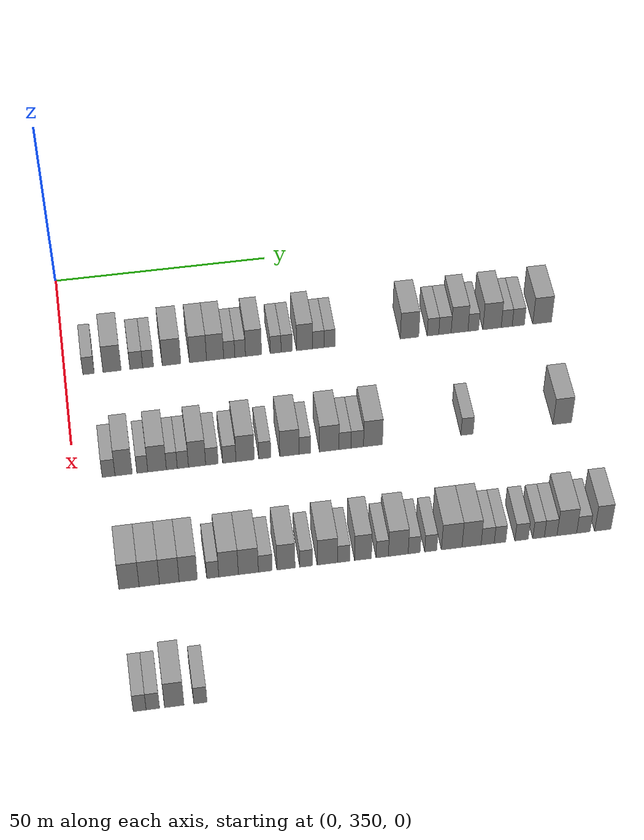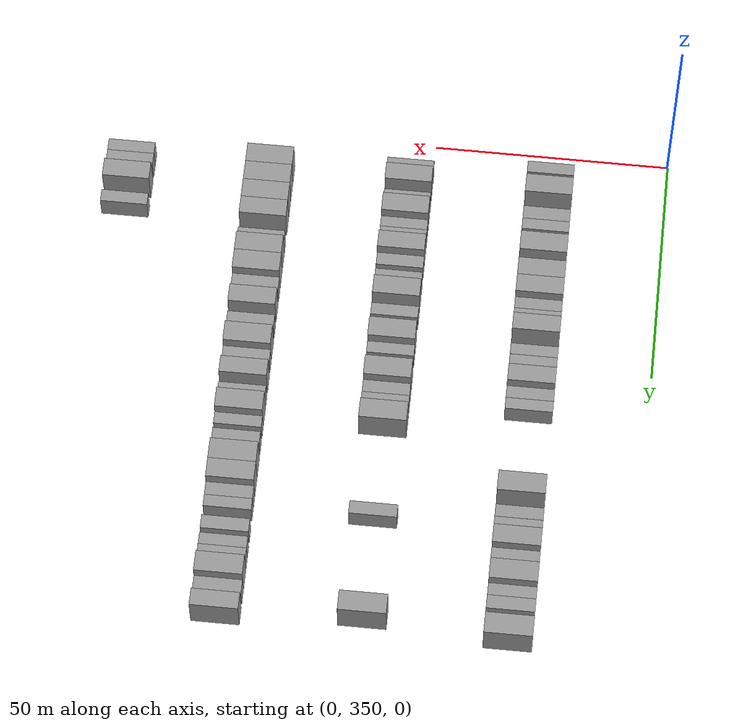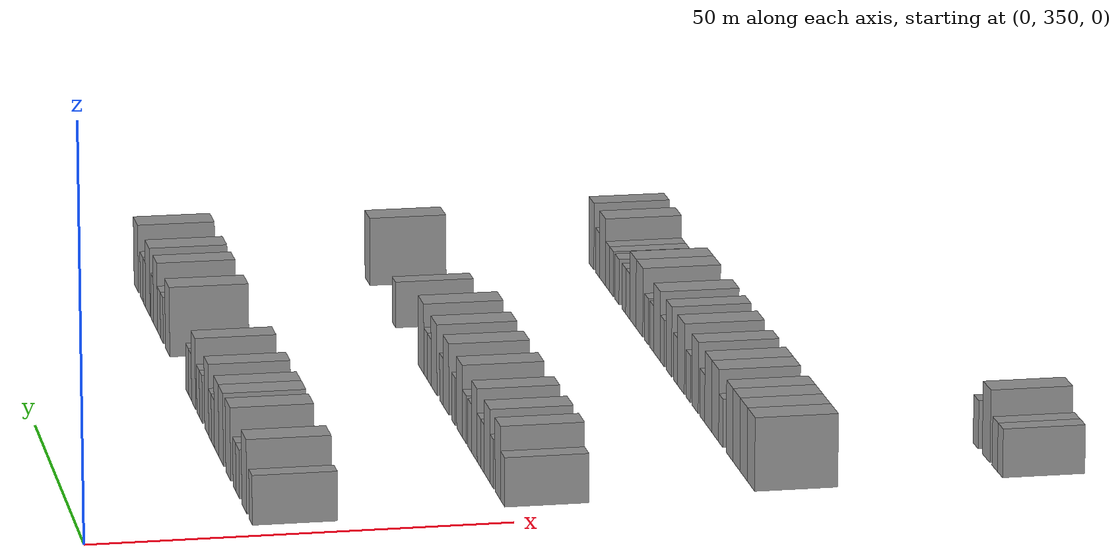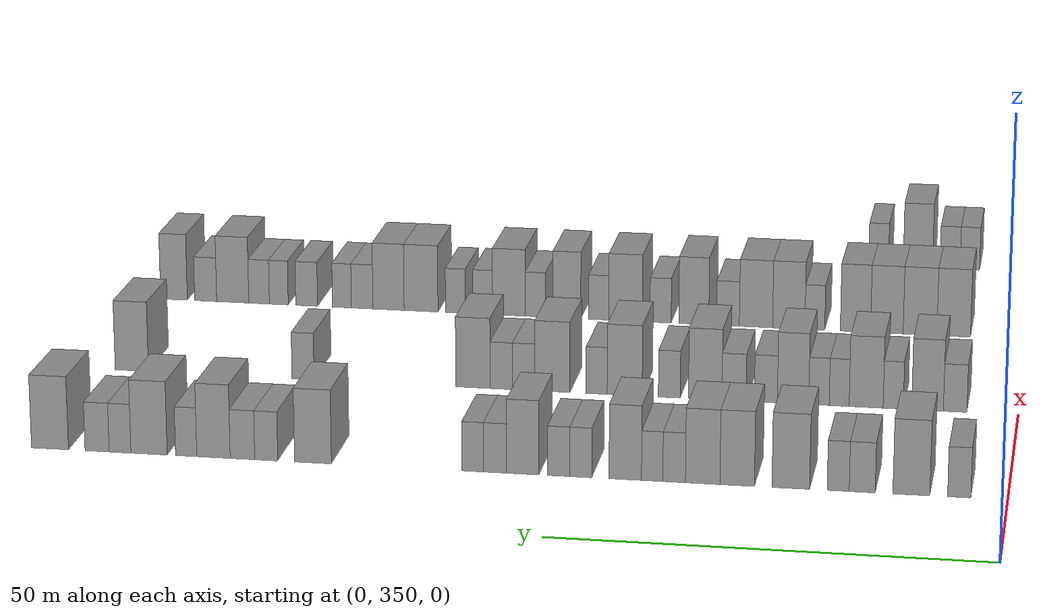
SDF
<sdf version="1.6">
 <world name="default">
  <model name="building_204">
   <static>1</static>
   <pose>25.0000 355.5029 0 0.000000 0.000000 0.000000</pose>
   <link name="link">
    <pose>0 0 3.00 0 0 0</pose>
    <collision name="collision"><geometry><box><size>10.0000 2.6158 6.0000</size></box></geometry></collision>
    <visual name="visual">
     <cast_shadows>0</cast_shadows>
     <geometry><box><size>10.0000 2.6158 6.0000</size></box></geometry>
     <material>
      <script>
       <uri>model://grey_wall/materials/scripts</uri>
       <uri>model://grey_wall/materials/textures</uri>
       <name>vrc/grey_wall</name>
      </script>
     </material>
    </visual>
   </link>
  </model>
  <model name="building_205">
   <static>1</static>
   <pose>25.0000 360.8982 0 0.000000 0.000000 0.000000</pose>
   <link name="link">
    <pose>0 0 4.50 0 0 0</pose>
    <collision name="collision"><geometry><box><size>10.0000 4.1748 9.0000</size></box></geometry></collision>
    <visual name="visual">
     <cast_shadows>0</cast_shadows>
     <geometry><box><size>10.0000 4.1748 9.0000</size></box></geometry>
     <material>
      <script>
       <uri>model://grey_wall/materials/scripts</uri>
       <uri>model://grey_wall/materials/textures</uri>
       <name>vrc/grey_wall</name>
      </script>
     </material>
    </visual>
   </link>
  </model>
  <model name="building_206">
   <static>1</static>
   <pose>25.0000 366.4586 0 0.000000 0.000000 0.000000</pose>
   <link name="link">
    <pose>0 0 3.00 0 0 0</pose>
    <collision name="collision"><geometry><box><size>10.0000 2.9460 6.0000</size></box></geometry></collision>
    <visual name="visual">
     <cast_shadows>0</cast_shadows>
     <geometry><box><size>10.0000 2.9460 6.0000</size></box></geometry>
     <material>
      <script>
       <uri>model://grey_wall/materials/scripts</uri>
       <uri>model://grey_wall/materials/textures</uri>
       <name>vrc/grey_wall</name>
      </script>
     </material>
    </visual>
   </link>
  </model>
  <model name="building_207">
   <static>1</static>
   <pose>25.0000 369.1864 0 0.000000 0.000000 0.000000</pose>
   <link name="link">
    <pose>0 0 3.00 0 0 0</pose>
    <collision name="collision"><geometry><box><size>10.0000 2.5094 6.0000</size></box></geometry></collision>
    <visual name="visual">
     <cast_shadows>0</cast_shadows>
     <geometry><box><size>10.0000 2.5094 6.0000</size></box></geometry>
     <material>
      <script>
       <uri>model://grey_wall/materials/scripts</uri>
       <uri>model://grey_wall/materials/textures</uri>
       <name>vrc/grey_wall</name>
      </script>
     </material>
    </visual>
   </link>
  </model>
  <model name="building_208">
   <static>1</static>
   <pose>25.0000 374.5882 0 0.000000 0.000000 0.000000</pose>
   <link name="link">
    <pose>0 0 4.50 0 0 0</pose>
    <collision name="collision"><geometry><box><size>10.0000 4.2943 9.0000</size></box></geometry></collision>
    <visual name="visual">
     <cast_shadows>0</cast_shadows>
     <geometry><box><size>10.0000 4.2943 9.0000</size></box></geometry>
     <material>
      <script>
       <uri>model://grey_wall/materials/scripts</uri>
       <uri>model://grey_wall/materials/textures</uri>
       <name>vrc/grey_wall</name>
      </script>
     </material>
    </visual>
   </link>
  </model>
  <model name="building_209">
   <static>1</static>
   <pose>25.0000 380.7117 0 0.000000 0.000000 0.000000</pose>
   <link name="link">
    <pose>0 0 4.50 0 0 0</pose>
    <collision name="collision"><geometry><box><size>10.0000 3.9527 9.0000</size></box></geometry></collision>
    <visual name="visual">
     <cast_shadows>0</cast_shadows>
     <geometry><box><size>10.0000 3.9527 9.0000</size></box></geometry>
     <material>
      <script>
       <uri>model://grey_wall/materials/scripts</uri>
       <uri>model://grey_wall/materials/textures</uri>
       <name>vrc/grey_wall</name>
      </script>
     </material>
    </visual>
   </link>
  </model>
  <model name="building_210">
   <static>1</static>
   <pose>25.0000 384.6689 0 0.000000 0.000000 0.000000</pose>
   <link name="link">
    <pose>0 0 4.50 0 0 0</pose>
    <collision name="collision"><geometry><box><size>10.0000 3.9617 9.0000</size></box></geometry></collision>
    <visual name="visual">
     <cast_shadows>0</cast_shadows>
     <geometry><box><size>10.0000 3.9617 9.0000</size></box></geometry>
     <material>
      <script>
       <uri>model://grey_wall/materials/scripts</uri>
       <uri>model://grey_wall/materials/textures</uri>
       <name>vrc/grey_wall</name>
      </script>
     </material>
    </visual>
   </link>
  </model>
  <model name="building_211">
   <static>1</static>
   <pose>25.0000 387.9474 0 0.000000 0.000000 0.000000</pose>
   <link name="link">
    <pose>0 0 3.00 0 0 0</pose>
    <collision name="collision"><geometry><box><size>10.0000 2.5954 6.0000</size></box></geometry></collision>
    <visual name="visual">
     <cast_shadows>0</cast_shadows>
     <geometry><box><size>10.0000 2.5954 6.0000</size></box></geometry>
     <material>
      <script>
       <uri>model://grey_wall/materials/scripts</uri>
       <uri>model://grey_wall/materials/textures</uri>
       <name>vrc/grey_wall</name>
      </script>
     </material>
    </visual>
   </link>
  </model>
  <model name="building_212">
   <static>1</static>
   <pose>25.0000 390.4776 0 0.000000 0.000000 0.000000</pose>
   <link name="link">
    <pose>0 0 3.00 0 0 0</pose>
    <collision name="collision"><geometry><box><size>10.0000 2.4650 6.0000</size></box></geometry></collision>
    <visual name="visual">
     <cast_shadows>0</cast_shadows>
     <geometry><box><size>10.0000 2.4650 6.0000</size></box></geometry>
     <material>
      <script>
       <uri>model://grey_wall/materials/scripts</uri>
       <uri>model://grey_wall/materials/textures</uri>
       <name>vrc/grey_wall</name>
      </script>
     </material>
    </visual>
   </link>
  </model>
  <model name="building_213">
   <static>1</static>
   <pose>25.0000 393.5845 0 0.000000 0.000000 0.000000</pose>
   <link name="link">
    <pose>0 0 4.50 0 0 0</pose>
    <collision name="collision"><geometry><box><size>10.0000 3.7487 9.0000</size></box></geometry></collision>
    <visual name="visual">
     <cast_shadows>0</cast_shadows>
     <geometry><box><size>10.0000 3.7487 9.0000</size></box></geometry>
     <material>
      <script>
       <uri>model://grey_wall/materials/scripts</uri>
       <uri>model://grey_wall/materials/textures</uri>
       <name>vrc/grey_wall</name>
      </script>
     </material>
    </visual>
   </link>
  </model>
  <model name="building_214">
   <static>1</static>
   <pose>25.0000 398.7284 0 0.000000 0.000000 0.000000</pose>
   <link name="link">
    <pose>0 0 3.00 0 0 0</pose>
    <collision name="collision"><geometry><box><size>10.0000 2.5392 6.0000</size></box></geometry></collision>
    <visual name="visual">
     <cast_shadows>0</cast_shadows>
     <geometry><box><size>10.0000 2.5392 6.0000</size></box></geometry>
     <material>
      <script>
       <uri>model://grey_wall/materials/scripts</uri>
       <uri>model://grey_wall/materials/textures</uri>
       <name>vrc/grey_wall</name>
      </script>
     </material>
    </visual>
   </link>
  </model>
  <model name="building_215">
   <static>1</static>
   <pose>25.0000 401.2964 0 0.000000 0.000000 0.000000</pose>
   <link name="link">
    <pose>0 0 3.00 0 0 0</pose>
    <collision name="collision"><geometry><box><size>10.0000 2.5966 6.0000</size></box></geometry></collision>
    <visual name="visual">
     <cast_shadows>0</cast_shadows>
     <geometry><box><size>10.0000 2.5966 6.0000</size></box></geometry>
     <material>
      <script>
       <uri>model://grey_wall/materials/scripts</uri>
       <uri>model://grey_wall/materials/textures</uri>
       <name>vrc/grey_wall</name>
      </script>
     </material>
    </visual>
   </link>
  </model>
  <model name="building_216">
   <static>1</static>
   <pose>25.0000 405.4718 0 0.000000 0.000000 0.000000</pose>
   <link name="link">
    <pose>0 0 4.50 0 0 0</pose>
    <collision name="collision"><geometry><box><size>10.0000 3.7543 9.0000</size></box></geometry></collision>
    <visual name="visual">
     <cast_shadows>0</cast_shadows>
     <geometry><box><size>10.0000 3.7543 9.0000</size></box></geometry>
     <material>
      <script>
       <uri>model://grey_wall/materials/scripts</uri>
       <uri>model://grey_wall/materials/textures</uri>
       <name>vrc/grey_wall</name>
      </script>
     </material>
    </visual>
   </link>
  </model>
  <model name="building_217">
   <static>1</static>
   <pose>25.0000 408.7031 0 0.000000 0.000000 0.000000</pose>
   <link name="link">
    <pose>0 0 3.00 0 0 0</pose>
    <collision name="collision"><geometry><box><size>10.0000 2.7082 6.0000</size></box></geometry></collision>
    <visual name="visual">
     <cast_shadows>0</cast_shadows>
     <geometry><box><size>10.0000 2.7082 6.0000</size></box></geometry>
     <material>
      <script>
       <uri>model://grey_wall/materials/scripts</uri>
       <uri>model://grey_wall/materials/textures</uri>
       <name>vrc/grey_wall</name>
      </script>
     </material>
    </visual>
   </link>
  </model>
  <model name="building_218">
   <static>1</static>
   <pose>25.0000 411.3138 0 0.000000 0.000000 0.000000</pose>
   <link name="link">
    <pose>0 0 3.00 0 0 0</pose>
    <collision name="collision"><geometry><box><size>10.0000 2.5133 6.0000</size></box></geometry></collision>
    <visual name="visual">
     <cast_shadows>0</cast_shadows>
     <geometry><box><size>10.0000 2.5133 6.0000</size></box></geometry>
     <material>
      <script>
       <uri>model://grey_wall/materials/scripts</uri>
       <uri>model://grey_wall/materials/textures</uri>
       <name>vrc/grey_wall</name>
      </script>
     </material>
    </visual>
   </link>
  </model>
  <model name="building_219">
   <static>1</static>
   <pose>25.0000 430.1067 0 0.000000 0.000000 0.000000</pose>
   <link name="link">
    <pose>0 0 4.50 0 0 0</pose>
    <collision name="collision"><geometry><box><size>10.0000 4.3575 9.0000</size></box></geometry></collision>
    <visual name="visual">
     <cast_shadows>0</cast_shadows>
     <geometry><box><size>10.0000 4.3575 9.0000</size></box></geometry>
     <material>
      <script>
       <uri>model://grey_wall/materials/scripts</uri>
       <uri>model://grey_wall/materials/textures</uri>
       <name>vrc/grey_wall</name>
      </script>
     </material>
    </visual>
   </link>
  </model>
  <model name="building_220">
   <static>1</static>
   <pose>25.0000 435.6535 0 0.000000 0.000000 0.000000</pose>
   <link name="link">
    <pose>0 0 3.00 0 0 0</pose>
    <collision name="collision"><geometry><box><size>10.0000 2.7361 6.0000</size></box></geometry></collision>
    <visual name="visual">
     <cast_shadows>0</cast_shadows>
     <geometry><box><size>10.0000 2.7361 6.0000</size></box></geometry>
     <material>
      <script>
       <uri>model://grey_wall/materials/scripts</uri>
       <uri>model://grey_wall/materials/textures</uri>
       <name>vrc/grey_wall</name>
      </script>
     </material>
    </visual>
   </link>
  </model>
  <model name="building_221">
   <static>1</static>
   <pose>25.0000 438.4815 0 0.000000 0.000000 0.000000</pose>
   <link name="link">
    <pose>0 0 3.00 0 0 0</pose>
    <collision name="collision"><geometry><box><size>10.0000 2.9198 6.0000</size></box></geometry></collision>
    <visual name="visual">
     <cast_shadows>0</cast_shadows>
     <geometry><box><size>10.0000 2.9198 6.0000</size></box></geometry>
     <material>
      <script>
       <uri>model://grey_wall/materials/scripts</uri>
       <uri>model://grey_wall/materials/textures</uri>
       <name>vrc/grey_wall</name>
      </script>
     </material>
    </visual>
   </link>
  </model>
  <model name="building_222">
   <static>1</static>
   <pose>25.0000 441.9347 0 0.000000 0.000000 0.000000</pose>
   <link name="link">
    <pose>0 0 4.50 0 0 0</pose>
    <collision name="collision"><geometry><box><size>10.0000 3.9866 9.0000</size></box></geometry></collision>
    <visual name="visual">
     <cast_shadows>0</cast_shadows>
     <geometry><box><size>10.0000 3.9866 9.0000</size></box></geometry>
     <material>
      <script>
       <uri>model://grey_wall/materials/scripts</uri>
       <uri>model://grey_wall/materials/textures</uri>
       <name>vrc/grey_wall</name>
      </script>
     </material>
    </visual>
   </link>
  </model>
  <model name="building_223">
   <static>1</static>
   <pose>25.0000 445.1974 0 0.000000 0.000000 0.000000</pose>
   <link name="link">
    <pose>0 0 3.00 0 0 0</pose>
    <collision name="collision"><geometry><box><size>10.0000 2.5389 6.0000</size></box></geometry></collision>
    <visual name="visual">
     <cast_shadows>0</cast_shadows>
     <geometry><box><size>10.0000 2.5389 6.0000</size></box></geometry>
     <material>
      <script>
       <uri>model://grey_wall/materials/scripts</uri>
       <uri>model://grey_wall/materials/textures</uri>
       <name>vrc/grey_wall</name>
      </script>
     </material>
    </visual>
   </link>
  </model>
  <model name="building_224">
   <static>1</static>
   <pose>25.0000 449.6411 0 0.000000 0.000000 0.000000</pose>
   <link name="link">
    <pose>0 0 4.50 0 0 0</pose>
    <collision name="collision"><geometry><box><size>10.0000 4.3483 9.0000</size></box></geometry></collision>
    <visual name="visual">
     <cast_shadows>0</cast_shadows>
     <geometry><box><size>10.0000 4.3483 9.0000</size></box></geometry>
     <material>
      <script>
       <uri>model://grey_wall/materials/scripts</uri>
       <uri>model://grey_wall/materials/textures</uri>
       <name>vrc/grey_wall</name>
      </script>
     </material>
    </visual>
   </link>
  </model>
  <model name="building_225">
   <static>1</static>
   <pose>25.0000 453.1235 0 0.000000 0.000000 0.000000</pose>
   <link name="link">
    <pose>0 0 3.00 0 0 0</pose>
    <collision name="collision"><geometry><box><size>10.0000 2.6165 6.0000</size></box></geometry></collision>
    <visual name="visual">
     <cast_shadows>0</cast_shadows>
     <geometry><box><size>10.0000 2.6165 6.0000</size></box></geometry>
     <material>
      <script>
       <uri>model://grey_wall/materials/scripts</uri>
       <uri>model://grey_wall/materials/textures</uri>
       <name>vrc/grey_wall</name>
      </script>
     </material>
    </visual>
   </link>
  </model>
  <model name="building_226">
   <static>1</static>
   <pose>25.0000 455.8854 0 0.000000 0.000000 0.000000</pose>
   <link name="link">
    <pose>0 0 3.00 0 0 0</pose>
    <collision name="collision"><geometry><box><size>10.0000 2.9074 6.0000</size></box></geometry></collision>
    <visual name="visual">
     <cast_shadows>0</cast_shadows>
     <geometry><box><size>10.0000 2.9074 6.0000</size></box></geometry>
     <material>
      <script>
       <uri>model://grey_wall/materials/scripts</uri>
       <uri>model://grey_wall/materials/textures</uri>
       <name>vrc/grey_wall</name>
      </script>
     </material>
    </visual>
   </link>
  </model>
  <model name="building_227">
   <static>1</static>
   <pose>25.0000 461.5717 0 0.000000 0.000000 0.000000</pose>
   <link name="link">
    <pose>0 0 4.50 0 0 0</pose>
    <collision name="collision"><geometry><box><size>10.0000 4.4653 9.0000</size></box></geometry></collision>
    <visual name="visual">
     <cast_shadows>0</cast_shadows>
     <geometry><box><size>10.0000 4.4653 9.0000</size></box></geometry>
     <material>
      <script>
       <uri>model://grey_wall/materials/scripts</uri>
       <uri>model://grey_wall/materials/textures</uri>
       <name>vrc/grey_wall</name>
      </script>
     </material>
    </visual>
   </link>
  </model>
  <model name="building_428">
   <static>1</static>
   <pose>55.0000 357.6111 0 0.000000 0.000000 0.000000</pose>
   <link name="link">
    <pose>0 0 3.00 0 0 0</pose>
    <collision name="collision"><geometry><box><size>10.0000 2.8282 6.0000</size></box></geometry></collision>
    <visual name="visual">
     <cast_shadows>0</cast_shadows>
     <geometry><box><size>10.0000 2.8282 6.0000</size></box></geometry>
     <material>
      <script>
       <uri>model://grey_wall/materials/scripts</uri>
       <uri>model://grey_wall/materials/textures</uri>
       <name>vrc/grey_wall</name>
      </script>
     </material>
    </visual>
   </link>
  </model>
  <model name="building_429">
   <static>1</static>
   <pose>55.0000 360.9331 0 0.000000 0.000000 0.000000</pose>
   <link name="link">
    <pose>0 0 4.50 0 0 0</pose>
    <collision name="collision"><geometry><box><size>10.0000 3.8157 9.0000</size></box></geometry></collision>
    <visual name="visual">
     <cast_shadows>0</cast_shadows>
     <geometry><box><size>10.0000 3.8157 9.0000</size></box></geometry>
     <material>
      <script>
       <uri>model://grey_wall/materials/scripts</uri>
       <uri>model://grey_wall/materials/textures</uri>
       <name>vrc/grey_wall</name>
      </script>
     </material>
    </visual>
   </link>
  </model>
  <model name="building_430">
   <static>1</static>
   <pose>55.0000 365.0594 0 0.000000 0.000000 0.000000</pose>
   <link name="link">
    <pose>0 0 3.00 0 0 0</pose>
    <collision name="collision"><geometry><box><size>10.0000 2.4368 6.0000</size></box></geometry></collision>
    <visual name="visual">
     <cast_shadows>0</cast_shadows>
     <geometry><box><size>10.0000 2.4368 6.0000</size></box></geometry>
     <material>
      <script>
       <uri>model://grey_wall/materials/scripts</uri>
       <uri>model://grey_wall/materials/textures</uri>
       <name>vrc/grey_wall</name>
      </script>
     </material>
    </visual>
   </link>
  </model>
  <model name="building_431">
   <static>1</static>
   <pose>55.0000 368.3306 0 0.000000 0.000000 0.000000</pose>
   <link name="link">
    <pose>0 0 4.50 0 0 0</pose>
    <collision name="collision"><geometry><box><size>10.0000 4.1057 9.0000</size></box></geometry></collision>
    <visual name="visual">
     <cast_shadows>0</cast_shadows>
     <geometry><box><size>10.0000 4.1057 9.0000</size></box></geometry>
     <material>
      <script>
       <uri>model://grey_wall/materials/scripts</uri>
       <uri>model://grey_wall/materials/textures</uri>
       <name>vrc/grey_wall</name>
      </script>
     </material>
    </visual>
   </link>
  </model>
  <model name="building_432">
   <static>1</static>
   <pose>55.0000 371.5910 0 0.000000 0.000000 0.000000</pose>
   <link name="link">
    <pose>0 0 3.00 0 0 0</pose>
    <collision name="collision"><geometry><box><size>10.0000 2.4151 6.0000</size></box></geometry></collision>
    <visual name="visual">
     <cast_shadows>0</cast_shadows>
     <geometry><box><size>10.0000 2.4151 6.0000</size></box></geometry>
     <material>
      <script>
       <uri>model://grey_wall/materials/scripts</uri>
       <uri>model://grey_wall/materials/textures</uri>
       <name>vrc/grey_wall</name>
      </script>
     </material>
    </visual>
   </link>
  </model>
  <model name="building_433">
   <static>1</static>
   <pose>55.0000 374.0405 0 0.000000 0.000000 0.000000</pose>
   <link name="link">
    <pose>0 0 3.00 0 0 0</pose>
    <collision name="collision"><geometry><box><size>10.0000 2.4839 6.0000</size></box></geometry></collision>
    <visual name="visual">
     <cast_shadows>0</cast_shadows>
     <geometry><box><size>10.0000 2.4839 6.0000</size></box></geometry>
     <material>
      <script>
       <uri>model://grey_wall/materials/scripts</uri>
       <uri>model://grey_wall/materials/textures</uri>
       <name>vrc/grey_wall</name>
      </script>
     </material>
    </visual>
   </link>
  </model>
  <model name="building_434">
   <static>1</static>
   <pose>55.0000 377.1916 0 0.000000 0.000000 0.000000</pose>
   <link name="link">
    <pose>0 0 4.50 0 0 0</pose>
    <collision name="collision"><geometry><box><size>10.0000 3.8182 9.0000</size></box></geometry></collision>
    <visual name="visual">
     <cast_shadows>0</cast_shadows>
     <geometry><box><size>10.0000 3.8182 9.0000</size></box></geometry>
     <material>
      <script>
       <uri>model://grey_wall/materials/scripts</uri>
       <uri>model://grey_wall/materials/textures</uri>
       <name>vrc/grey_wall</name>
      </script>
     </material>
    </visual>
   </link>
  </model>
  <model name="building_435">
   <static>1</static>
   <pose>55.0000 380.4967 0 0.000000 0.000000 0.000000</pose>
   <link name="link">
    <pose>0 0 3.00 0 0 0</pose>
    <collision name="collision"><geometry><box><size>10.0000 2.7920 6.0000</size></box></geometry></collision>
    <visual name="visual">
     <cast_shadows>0</cast_shadows>
     <geometry><box><size>10.0000 2.7920 6.0000</size></box></geometry>
     <material>
      <script>
       <uri>model://grey_wall/materials/scripts</uri>
       <uri>model://grey_wall/materials/textures</uri>
       <name>vrc/grey_wall</name>
      </script>
     </material>
    </visual>
   </link>
  </model>
  <model name="building_436">
   <static>1</static>
   <pose>55.0000 384.3716 0 0.000000 0.000000 0.000000</pose>
   <link name="link">
    <pose>0 0 3.00 0 0 0</pose>
    <collision name="collision"><geometry><box><size>10.0000 2.9579 6.0000</size></box></geometry></collision>
    <visual name="visual">
     <cast_shadows>0</cast_shadows>
     <geometry><box><size>10.0000 2.9579 6.0000</size></box></geometry>
     <material>
      <script>
       <uri>model://grey_wall/materials/scripts</uri>
       <uri>model://grey_wall/materials/textures</uri>
       <name>vrc/grey_wall</name>
      </script>
     </material>
    </visual>
   </link>
  </model>
  <model name="building_437">
   <static>1</static>
   <pose>55.0000 387.8995 0 0.000000 0.000000 0.000000</pose>
   <link name="link">
    <pose>0 0 4.50 0 0 0</pose>
    <collision name="collision"><geometry><box><size>10.0000 4.0979 9.0000</size></box></geometry></collision>
    <visual name="visual">
     <cast_shadows>0</cast_shadows>
     <geometry><box><size>10.0000 4.0979 9.0000</size></box></geometry>
     <material>
      <script>
       <uri>model://grey_wall/materials/scripts</uri>
       <uri>model://grey_wall/materials/textures</uri>
       <name>vrc/grey_wall</name>
      </script>
     </material>
    </visual>
   </link>
  </model>
  <model name="building_438">
   <static>1</static>
   <pose>55.0000 392.2927 0 0.000000 0.000000 0.000000</pose>
   <link name="link">
    <pose>0 0 3.00 0 0 0</pose>
    <collision name="collision"><geometry><box><size>10.0000 2.6885 6.0000</size></box></geometry></collision>
    <visual name="visual">
     <cast_shadows>0</cast_shadows>
     <geometry><box><size>10.0000 2.6885 6.0000</size></box></geometry>
     <material>
      <script>
       <uri>model://grey_wall/materials/scripts</uri>
       <uri>model://grey_wall/materials/textures</uri>
       <name>vrc/grey_wall</name>
      </script>
     </material>
    </visual>
   </link>
  </model>
  <model name="building_439">
   <static>1</static>
   <pose>55.0000 397.7881 0 0.000000 0.000000 0.000000</pose>
   <link name="link">
    <pose>0 0 4.50 0 0 0</pose>
    <collision name="collision"><geometry><box><size>10.0000 4.3022 9.0000</size></box></geometry></collision>
    <visual name="visual">
     <cast_shadows>0</cast_shadows>
     <geometry><box><size>10.0000 4.3022 9.0000</size></box></geometry>
     <material>
      <script>
       <uri>model://grey_wall/materials/scripts</uri>
       <uri>model://grey_wall/materials/textures</uri>
       <name>vrc/grey_wall</name>
      </script>
     </material>
    </visual>
   </link>
  </model>
  <model name="building_440">
   <static>1</static>
   <pose>55.0000 401.2370 0 0.000000 0.000000 0.000000</pose>
   <link name="link">
    <pose>0 0 3.00 0 0 0</pose>
    <collision name="collision"><geometry><box><size>10.0000 2.5956 6.0000</size></box></geometry></collision>
    <visual name="visual">
     <cast_shadows>0</cast_shadows>
     <geometry><box><size>10.0000 2.5956 6.0000</size></box></geometry>
     <material>
      <script>
       <uri>model://grey_wall/materials/scripts</uri>
       <uri>model://grey_wall/materials/textures</uri>
       <name>vrc/grey_wall</name>
      </script>
     </material>
    </visual>
   </link>
  </model>
  <model name="building_441">
   <static>1</static>
   <pose>55.0000 406.7247 0 0.000000 0.000000 0.000000</pose>
   <link name="link">
    <pose>0 0 4.50 0 0 0</pose>
    <collision name="collision"><geometry><box><size>10.0000 4.3798 9.0000</size></box></geometry></collision>
    <visual name="visual">
     <cast_shadows>0</cast_shadows>
     <geometry><box><size>10.0000 4.3798 9.0000</size></box></geometry>
     <material>
      <script>
       <uri>model://grey_wall/materials/scripts</uri>
       <uri>model://grey_wall/materials/textures</uri>
       <name>vrc/grey_wall</name>
      </script>
     </material>
    </visual>
   </link>
  </model>
  <model name="building_442">
   <static>1</static>
   <pose>55.0000 410.2827 0 0.000000 0.000000 0.000000</pose>
   <link name="link">
    <pose>0 0 3.00 0 0 0</pose>
    <collision name="collision"><geometry><box><size>10.0000 2.7362 6.0000</size></box></geometry></collision>
    <visual name="visual">
     <cast_shadows>0</cast_shadows>
     <geometry><box><size>10.0000 2.7362 6.0000</size></box></geometry>
     <material>
      <script>
       <uri>model://grey_wall/materials/scripts</uri>
       <uri>model://grey_wall/materials/textures</uri>
       <name>vrc/grey_wall</name>
      </script>
     </material>
    </visual>
   </link>
  </model>
  <model name="building_443">
   <static>1</static>
   <pose>55.0000 413.0465 0 0.000000 0.000000 0.000000</pose>
   <link name="link">
    <pose>0 0 3.00 0 0 0</pose>
    <collision name="collision"><geometry><box><size>10.0000 2.7914 6.0000</size></box></geometry></collision>
    <visual name="visual">
     <cast_shadows>0</cast_shadows>
     <geometry><box><size>10.0000 2.7914 6.0000</size></box></geometry>
     <material>
      <script>
       <uri>model://grey_wall/materials/scripts</uri>
       <uri>model://grey_wall/materials/textures</uri>
       <name>vrc/grey_wall</name>
      </script>
     </material>
    </visual>
   </link>
  </model>
  <model name="building_444">
   <static>1</static>
   <pose>55.0000 416.5782 0 0.000000 0.000000 0.000000</pose>
   <link name="link">
    <pose>0 0 4.50 0 0 0</pose>
    <collision name="collision"><geometry><box><size>10.0000 4.2719 9.0000</size></box></geometry></collision>
    <visual name="visual">
     <cast_shadows>0</cast_shadows>
     <geometry><box><size>10.0000 4.2719 9.0000</size></box></geometry>
     <material>
      <script>
       <uri>model://grey_wall/materials/scripts</uri>
       <uri>model://grey_wall/materials/textures</uri>
       <name>vrc/grey_wall</name>
      </script>
     </material>
    </visual>
   </link>
  </model>
  <model name="building_445">
   <static>1</static>
   <pose>55.0000 437.8885 0 0.000000 0.000000 0.000000</pose>
   <link name="link">
    <pose>0 0 3.00 0 0 0</pose>
    <collision name="collision"><geometry><box><size>10.0000 2.7829 6.0000</size></box></geometry></collision>
    <visual name="visual">
     <cast_shadows>0</cast_shadows>
     <geometry><box><size>10.0000 2.7829 6.0000</size></box></geometry>
     <material>
      <script>
       <uri>model://grey_wall/materials/scripts</uri>
       <uri>model://grey_wall/materials/textures</uri>
       <name>vrc/grey_wall</name>
      </script>
     </material>
    </visual>
   </link>
  </model>
  <model name="building_446">
   <static>1</static>
   <pose>55.0000 459.6606 0 0.000000 0.000000 0.000000</pose>
   <link name="link">
    <pose>0 0 4.50 0 0 0</pose>
    <collision name="collision"><geometry><box><size>10.0000 4.2538 9.0000</size></box></geometry></collision>
    <visual name="visual">
     <cast_shadows>0</cast_shadows>
     <geometry><box><size>10.0000 4.2538 9.0000</size></box></geometry>
     <material>
      <script>
       <uri>model://grey_wall/materials/scripts</uri>
       <uri>model://grey_wall/materials/textures</uri>
       <name>vrc/grey_wall</name>
      </script>
     </material>
    </visual>
   </link>
  </model>
  <model name="building_640">
   <static>1</static>
   <pose>85.0000 359.4458 0 0.000000 0.000000 0.000000</pose>
   <link name="link">
    <pose>0 0 4.50 0 0 0</pose>
    <collision name="collision"><geometry><box><size>10.0000 4.2863 9.0000</size></box></geometry></collision>
    <visual name="visual">
     <cast_shadows>0</cast_shadows>
     <geometry><box><size>10.0000 4.2863 9.0000</size></box></geometry>
     <material>
      <script>
       <uri>model://grey_wall/materials/scripts</uri>
       <uri>model://grey_wall/materials/textures</uri>
       <name>vrc/grey_wall</name>
      </script>
     </material>
    </visual>
   </link>
  </model>
  <model name="building_641">
   <static>1</static>
   <pose>85.0000 363.7443 0 0.000000 0.000000 0.000000</pose>
   <link name="link">
    <pose>0 0 4.50 0 0 0</pose>
    <collision name="collision"><geometry><box><size>10.0000 4.3106 9.0000</size></box></geometry></collision>
    <visual name="visual">
     <cast_shadows>0</cast_shadows>
     <geometry><box><size>10.0000 4.3106 9.0000</size></box></geometry>
     <material>
      <script>
       <uri>model://grey_wall/materials/scripts</uri>
       <uri>model://grey_wall/materials/textures</uri>
       <name>vrc/grey_wall</name>
      </script>
     </material>
    </visual>
   </link>
  </model>
  <model name="building_642">
   <static>1</static>
   <pose>85.0000 367.9860 0 0.000000 0.000000 0.000000</pose>
   <link name="link">
    <pose>0 0 4.50 0 0 0</pose>
    <collision name="collision"><geometry><box><size>10.0000 4.1729 9.0000</size></box></geometry></collision>
    <visual name="visual">
     <cast_shadows>0</cast_shadows>
     <geometry><box><size>10.0000 4.1729 9.0000</size></box></geometry>
     <material>
      <script>
       <uri>model://grey_wall/materials/scripts</uri>
       <uri>model://grey_wall/materials/textures</uri>
       <name>vrc/grey_wall</name>
      </script>
     </material>
    </visual>
   </link>
  </model>
  <model name="building_643">
   <static>1</static>
   <pose>85.0000 372.0165 0 0.000000 0.000000 0.000000</pose>
   <link name="link">
    <pose>0 0 4.50 0 0 0</pose>
    <collision name="collision"><geometry><box><size>10.0000 3.8881 9.0000</size></box></geometry></collision>
    <visual name="visual">
     <cast_shadows>0</cast_shadows>
     <geometry><box><size>10.0000 3.8881 9.0000</size></box></geometry>
     <material>
      <script>
       <uri>model://grey_wall/materials/scripts</uri>
       <uri>model://grey_wall/materials/textures</uri>
       <name>vrc/grey_wall</name>
      </script>
     </material>
    </visual>
   </link>
  </model>
  <model name="building_644">
   <static>1</static>
   <pose>85.0000 377.2361 0 0.000000 0.000000 0.000000</pose>
   <link name="link">
    <pose>0 0 3.00 0 0 0</pose>
    <collision name="collision"><geometry><box><size>10.0000 2.5511 6.0000</size></box></geometry></collision>
    <visual name="visual">
     <cast_shadows>0</cast_shadows>
     <geometry><box><size>10.0000 2.5511 6.0000</size></box></geometry>
     <material>
      <script>
       <uri>model://grey_wall/materials/scripts</uri>
       <uri>model://grey_wall/materials/textures</uri>
       <name>vrc/grey_wall</name>
      </script>
     </material>
    </visual>
   </link>
  </model>
  <model name="building_645">
   <static>1</static>
   <pose>85.0000 380.6014 0 0.000000 0.000000 0.000000</pose>
   <link name="link">
    <pose>0 0 4.50 0 0 0</pose>
    <collision name="collision"><geometry><box><size>10.0000 4.1794 9.0000</size></box></geometry></collision>
    <visual name="visual">
     <cast_shadows>0</cast_shadows>
     <geometry><box><size>10.0000 4.1794 9.0000</size></box></geometry>
     <material>
      <script>
       <uri>model://grey_wall/materials/scripts</uri>
       <uri>model://grey_wall/materials/textures</uri>
       <name>vrc/grey_wall</name>
      </script>
     </material>
    </visual>
   </link>
  </model>
  <model name="building_646">
   <static>1</static>
   <pose>85.0000 384.8403 0 0.000000 0.000000 0.000000</pose>
   <link name="link">
    <pose>0 0 4.50 0 0 0</pose>
    <collision name="collision"><geometry><box><size>10.0000 4.2985 9.0000</size></box></geometry></collision>
    <visual name="visual">
     <cast_shadows>0</cast_shadows>
     <geometry><box><size>10.0000 4.2985 9.0000</size></box></geometry>
     <material>
      <script>
       <uri>model://grey_wall/materials/scripts</uri>
       <uri>model://grey_wall/materials/textures</uri>
       <name>vrc/grey_wall</name>
      </script>
     </material>
    </visual>
   </link>
  </model>
  <model name="building_647">
   <static>1</static>
   <pose>85.0000 388.4713 0 0.000000 0.000000 0.000000</pose>
   <link name="link">
    <pose>0 0 3.00 0 0 0</pose>
    <collision name="collision"><geometry><box><size>10.0000 2.9635 6.0000</size></box></geometry></collision>
    <visual name="visual">
     <cast_shadows>0</cast_shadows>
     <geometry><box><size>10.0000 2.9635 6.0000</size></box></geometry>
     <material>
      <script>
       <uri>model://grey_wall/materials/scripts</uri>
       <uri>model://grey_wall/materials/textures</uri>
       <name>vrc/grey_wall</name>
      </script>
     </material>
    </visual>
   </link>
  </model>
  <model name="building_648">
   <static>1</static>
   <pose>85.0000 392.9029 0 0.000000 0.000000 0.000000</pose>
   <link name="link">
    <pose>0 0 4.50 0 0 0</pose>
    <collision name="collision"><geometry><box><size>10.0000 3.8998 9.0000</size></box></geometry></collision>
    <visual name="visual">
     <cast_shadows>0</cast_shadows>
     <geometry><box><size>10.0000 3.8998 9.0000</size></box></geometry>
     <material>
      <script>
       <uri>model://grey_wall/materials/scripts</uri>
       <uri>model://grey_wall/materials/textures</uri>
       <name>vrc/grey_wall</name>
      </script>
     </material>
    </visual>
   </link>
  </model>
  <model name="building_649">
   <static>1</static>
   <pose>85.0000 397.2246 0 0.000000 0.000000 0.000000</pose>
   <link name="link">
    <pose>0 0 3.00 0 0 0</pose>
    <collision name="collision"><geometry><box><size>10.0000 2.7435 6.0000</size></box></geometry></collision>
    <visual name="visual">
     <cast_shadows>0</cast_shadows>
     <geometry><box><size>10.0000 2.7435 6.0000</size></box></geometry>
     <material>
      <script>
       <uri>model://grey_wall/materials/scripts</uri>
       <uri>model://grey_wall/materials/textures</uri>
       <name>vrc/grey_wall</name>
      </script>
     </material>
    </visual>
   </link>
  </model>
  <model name="building_650">
   <static>1</static>
   <pose>85.0000 401.7893 0 0.000000 0.000000 0.000000</pose>
   <link name="link">
    <pose>0 0 4.50 0 0 0</pose>
    <collision name="collision"><geometry><box><size>10.0000 4.3860 9.0000</size></box></geometry></collision>
    <visual name="visual">
     <cast_shadows>0</cast_shadows>
     <geometry><box><size>10.0000 4.3860 9.0000</size></box></geometry>
     <material>
      <script>
       <uri>model://grey_wall/materials/scripts</uri>
       <uri>model://grey_wall/materials/textures</uri>
       <name>vrc/grey_wall</name>
      </script>
     </material>
    </visual>
   </link>
  </model>
  <model name="building_651">
   <static>1</static>
   <pose>85.0000 405.3227 0 0.000000 0.000000 0.000000</pose>
   <link name="link">
    <pose>0 0 3.00 0 0 0</pose>
    <collision name="collision"><geometry><box><size>10.0000 2.6808 6.0000</size></box></geometry></collision>
    <visual name="visual">
     <cast_shadows>0</cast_shadows>
     <geometry><box><size>10.0000 2.6808 6.0000</size></box></geometry>
     <material>
      <script>
       <uri>model://grey_wall/materials/scripts</uri>
       <uri>model://grey_wall/materials/textures</uri>
       <name>vrc/grey_wall</name>
      </script>
     </material>
    </visual>
   </link>
  </model>
  <model name="building_652">
   <static>1</static>
   <pose>85.0000 409.4919 0 0.000000 0.000000 0.000000</pose>
   <link name="link">
    <pose>0 0 4.50 0 0 0</pose>
    <collision name="collision"><geometry><box><size>10.0000 3.6576 9.0000</size></box></geometry></collision>
    <visual name="visual">
     <cast_shadows>0</cast_shadows>
     <geometry><box><size>10.0000 3.6576 9.0000</size></box></geometry>
     <material>
      <script>
       <uri>model://grey_wall/materials/scripts</uri>
       <uri>model://grey_wall/materials/textures</uri>
       <name>vrc/grey_wall</name>
      </script>
     </material>
    </visual>
   </link>
  </model>
  <model name="building_653">
   <static>1</static>
   <pose>85.0000 413.6516 0 0.000000 0.000000 0.000000</pose>
   <link name="link">
    <pose>0 0 3.00 0 0 0</pose>
    <collision name="collision"><geometry><box><size>10.0000 2.6617 6.0000</size></box></geometry></collision>
    <visual name="visual">
     <cast_shadows>0</cast_shadows>
     <geometry><box><size>10.0000 2.6617 6.0000</size></box></geometry>
     <material>
      <script>
       <uri>model://grey_wall/materials/scripts</uri>
       <uri>model://grey_wall/materials/textures</uri>
       <name>vrc/grey_wall</name>
      </script>
     </material>
    </visual>
   </link>
  </model>
  <model name="building_654">
   <static>1</static>
   <pose>85.0000 417.1267 0 0.000000 0.000000 0.000000</pose>
   <link name="link">
    <pose>0 0 4.50 0 0 0</pose>
    <collision name="collision"><geometry><box><size>10.0000 4.2886 9.0000</size></box></geometry></collision>
    <visual name="visual">
     <cast_shadows>0</cast_shadows>
     <geometry><box><size>10.0000 4.2886 9.0000</size></box></geometry>
     <material>
      <script>
       <uri>model://grey_wall/materials/scripts</uri>
       <uri>model://grey_wall/materials/textures</uri>
       <name>vrc/grey_wall</name>
      </script>
     </material>
    </visual>
   </link>
  </model>
  <model name="building_655">
   <static>1</static>
   <pose>85.0000 420.5681 0 0.000000 0.000000 0.000000</pose>
   <link name="link">
    <pose>0 0 3.00 0 0 0</pose>
    <collision name="collision"><geometry><box><size>10.0000 2.5942 6.0000</size></box></geometry></collision>
    <visual name="visual">
     <cast_shadows>0</cast_shadows>
     <geometry><box><size>10.0000 2.5942 6.0000</size></box></geometry>
     <material>
      <script>
       <uri>model://grey_wall/materials/scripts</uri>
       <uri>model://grey_wall/materials/textures</uri>
       <name>vrc/grey_wall</name>
      </script>
     </material>
    </visual>
   </link>
  </model>
  <model name="building_656">
   <static>1</static>
   <pose>85.0000 424.1833 0 0.000000 0.000000 0.000000</pose>
   <link name="link">
    <pose>0 0 3.00 0 0 0</pose>
    <collision name="collision"><geometry><box><size>10.0000 2.6361 6.0000</size></box></geometry></collision>
    <visual name="visual">
     <cast_shadows>0</cast_shadows>
     <geometry><box><size>10.0000 2.6361 6.0000</size></box></geometry>
     <material>
      <script>
       <uri>model://grey_wall/materials/scripts</uri>
       <uri>model://grey_wall/materials/textures</uri>
       <name>vrc/grey_wall</name>
      </script>
     </material>
    </visual>
   </link>
  </model>
  <model name="building_657">
   <static>1</static>
   <pose>85.0000 428.7484 0 0.000000 0.000000 0.000000</pose>
   <link name="link">
    <pose>0 0 4.50 0 0 0</pose>
    <collision name="collision"><geometry><box><size>10.0000 4.4941 9.0000</size></box></geometry></collision>
    <visual name="visual">
     <cast_shadows>0</cast_shadows>
     <geometry><box><size>10.0000 4.4941 9.0000</size></box></geometry>
     <material>
      <script>
       <uri>model://grey_wall/materials/scripts</uri>
       <uri>model://grey_wall/materials/textures</uri>
       <name>vrc/grey_wall</name>
      </script>
     </material>
    </visual>
   </link>
  </model>
  <model name="building_658">
   <static>1</static>
   <pose>85.0000 433.0735 0 0.000000 0.000000 0.000000</pose>
   <link name="link">
    <pose>0 0 4.50 0 0 0</pose>
    <collision name="collision"><geometry><box><size>10.0000 4.1562 9.0000</size></box></geometry></collision>
    <visual name="visual">
     <cast_shadows>0</cast_shadows>
     <geometry><box><size>10.0000 4.1562 9.0000</size></box></geometry>
     <material>
      <script>
       <uri>model://grey_wall/materials/scripts</uri>
       <uri>model://grey_wall/materials/textures</uri>
       <name>vrc/grey_wall</name>
      </script>
     </material>
    </visual>
   </link>
  </model>
  <model name="building_659">
   <static>1</static>
   <pose>85.0000 436.5887 0 0.000000 0.000000 0.000000</pose>
   <link name="link">
    <pose>0 0 3.00 0 0 0</pose>
    <collision name="collision"><geometry><box><size>10.0000 2.8742 6.0000</size></box></geometry></collision>
    <visual name="visual">
     <cast_shadows>0</cast_shadows>
     <geometry><box><size>10.0000 2.8742 6.0000</size></box></geometry>
     <material>
      <script>
       <uri>model://grey_wall/materials/scripts</uri>
       <uri>model://grey_wall/materials/textures</uri>
       <name>vrc/grey_wall</name>
      </script>
     </material>
    </visual>
   </link>
  </model>
  <model name="building_660">
   <static>1</static>
   <pose>85.0000 439.2887 0 0.000000 0.000000 0.000000</pose>
   <link name="link">
    <pose>0 0 3.00 0 0 0</pose>
    <collision name="collision"><geometry><box><size>10.0000 2.5259 6.0000</size></box></geometry></collision>
    <visual name="visual">
     <cast_shadows>0</cast_shadows>
     <geometry><box><size>10.0000 2.5259 6.0000</size></box></geometry>
     <material>
      <script>
       <uri>model://grey_wall/materials/scripts</uri>
       <uri>model://grey_wall/materials/textures</uri>
       <name>vrc/grey_wall</name>
      </script>
     </material>
    </visual>
   </link>
  </model>
  <model name="building_661">
   <static>1</static>
   <pose>85.0000 444.0174 0 0.000000 0.000000 0.000000</pose>
   <link name="link">
    <pose>0 0 3.00 0 0 0</pose>
    <collision name="collision"><geometry><box><size>10.0000 2.9313 6.0000</size></box></geometry></collision>
    <visual name="visual">
     <cast_shadows>0</cast_shadows>
     <geometry><box><size>10.0000 2.9313 6.0000</size></box></geometry>
     <material>
      <script>
       <uri>model://grey_wall/materials/scripts</uri>
       <uri>model://grey_wall/materials/textures</uri>
       <name>vrc/grey_wall</name>
      </script>
     </material>
    </visual>
   </link>
  </model>
  <model name="building_662">
   <static>1</static>
   <pose>85.0000 447.7524 0 0.000000 0.000000 0.000000</pose>
   <link name="link">
    <pose>0 0 3.00 0 0 0</pose>
    <collision name="collision"><geometry><box><size>10.0000 2.5388 6.0000</size></box></geometry></collision>
    <visual name="visual">
     <cast_shadows>0</cast_shadows>
     <geometry><box><size>10.0000 2.5388 6.0000</size></box></geometry>
     <material>
      <script>
       <uri>model://grey_wall/materials/scripts</uri>
       <uri>model://grey_wall/materials/textures</uri>
       <name>vrc/grey_wall</name>
      </script>
     </material>
    </visual>
   </link>
  </model>
  <model name="building_663">
   <static>1</static>
   <pose>85.0000 450.4069 0 0.000000 0.000000 0.000000</pose>
   <link name="link">
    <pose>0 0 3.00 0 0 0</pose>
    <collision name="collision"><geometry><box><size>10.0000 2.7702 6.0000</size></box></geometry></collision>
    <visual name="visual">
     <cast_shadows>0</cast_shadows>
     <geometry><box><size>10.0000 2.7702 6.0000</size></box></geometry>
     <material>
      <script>
       <uri>model://grey_wall/materials/scripts</uri>
       <uri>model://grey_wall/materials/textures</uri>
       <name>vrc/grey_wall</name>
      </script>
     </material>
    </visual>
   </link>
  </model>
  <model name="building_664">
   <static>1</static>
   <pose>85.0000 453.9564 0 0.000000 0.000000 0.000000</pose>
   <link name="link">
    <pose>0 0 4.50 0 0 0</pose>
    <collision name="collision"><geometry><box><size>10.0000 4.3289 9.0000</size></box></geometry></collision>
    <visual name="visual">
     <cast_shadows>0</cast_shadows>
     <geometry><box><size>10.0000 4.3289 9.0000</size></box></geometry>
     <material>
      <script>
       <uri>model://grey_wall/materials/scripts</uri>
       <uri>model://grey_wall/materials/textures</uri>
       <name>vrc/grey_wall</name>
      </script>
     </material>
    </visual>
   </link>
  </model>
  <model name="building_665">
   <static>1</static>
   <pose>85.0000 457.6031 0 0.000000 0.000000 0.000000</pose>
   <link name="link">
    <pose>0 0 3.00 0 0 0</pose>
    <collision name="collision"><geometry><box><size>10.0000 2.9645 6.0000</size></box></geometry></collision>
    <visual name="visual">
     <cast_shadows>0</cast_shadows>
     <geometry><box><size>10.0000 2.9645 6.0000</size></box></geometry>
     <material>
      <script>
       <uri>model://grey_wall/materials/scripts</uri>
       <uri>model://grey_wall/materials/textures</uri>
       <name>vrc/grey_wall</name>
      </script>
     </material>
    </visual>
   </link>
  </model>
  <model name="building_666">
   <static>1</static>
   <pose>85.0000 461.8909 0 0.000000 0.000000 0.000000</pose>
   <link name="link">
    <pose>0 0 4.50 0 0 0</pose>
    <collision name="collision"><geometry><box><size>10.0000 3.6112 9.0000</size></box></geometry></collision>
    <visual name="visual">
     <cast_shadows>0</cast_shadows>
     <geometry><box><size>10.0000 3.6112 9.0000</size></box></geometry>
     <material>
      <script>
       <uri>model://grey_wall/materials/scripts</uri>
       <uri>model://grey_wall/materials/textures</uri>
       <name>vrc/grey_wall</name>
      </script>
     </material>
    </visual>
   </link>
  </model>
  <model name="building_862">
   <static>1</static>
   <pose>115.0000 358.9282 0 0.000000 0.000000 0.000000</pose>
   <link name="link">
    <pose>0 0 3.00 0 0 0</pose>
    <collision name="collision"><geometry><box><size>10.0000 2.6213 6.0000</size></box></geometry></collision>
    <visual name="visual">
     <cast_shadows>0</cast_shadows>
     <geometry><box><size>10.0000 2.6213 6.0000</size></box></geometry>
     <material>
      <script>
       <uri>model://grey_wall/materials/scripts</uri>
       <uri>model://grey_wall/materials/textures</uri>
       <name>vrc/grey_wall</name>
      </script>
     </material>
    </visual>
   </link>
  </model>
  <model name="building_863">
   <static>1</static>
   <pose>115.0000 361.6030 0 0.000000 0.000000 0.000000</pose>
   <link name="link">
    <pose>0 0 3.00 0 0 0</pose>
    <collision name="collision"><geometry><box><size>10.0000 2.7283 6.0000</size></box></geometry></collision>
    <visual name="visual">
     <cast_shadows>0</cast_shadows>
     <geometry><box><size>10.0000 2.7283 6.0000</size></box></geometry>
     <material>
      <script>
       <uri>model://grey_wall/materials/scripts</uri>
       <uri>model://grey_wall/materials/textures</uri>
       <name>vrc/grey_wall</name>
      </script>
     </material>
    </visual>
   </link>
  </model>
  <model name="building_864">
   <static>1</static>
   <pose>115.0000 365.9481 0 0.000000 0.000000 0.000000</pose>
   <link name="link">
    <pose>0 0 4.50 0 0 0</pose>
    <collision name="collision"><geometry><box><size>10.0000 3.9619 9.0000</size></box></geometry></collision>
    <visual name="visual">
     <cast_shadows>0</cast_shadows>
     <geometry><box><size>10.0000 3.9619 9.0000</size></box></geometry>
     <material>
      <script>
       <uri>model://grey_wall/materials/scripts</uri>
       <uri>model://grey_wall/materials/textures</uri>
       <name>vrc/grey_wall</name>
      </script>
     </material>
    </visual>
   </link>
  </model>
  <model name="building_865">
   <static>1</static>
   <pose>115.0000 371.2706 0 0.000000 0.000000 0.000000</pose>
   <link name="link">
    <pose>0 0 3.00 0 0 0</pose>
    <collision name="collision"><geometry><box><size>10.0000 2.6831 6.0000</size></box></geometry></collision>
    <visual name="visual">
     <cast_shadows>0</cast_shadows>
     <geometry><box><size>10.0000 2.6831 6.0000</size></box></geometry>
     <material>
      <script>
       <uri>model://grey_wall/materials/scripts</uri>
       <uri>model://grey_wall/materials/textures</uri>
       <name>vrc/grey_wall</name>
      </script>
     </material>
    </visual>
   </link>
  </model>
 </world>
</sdf>
